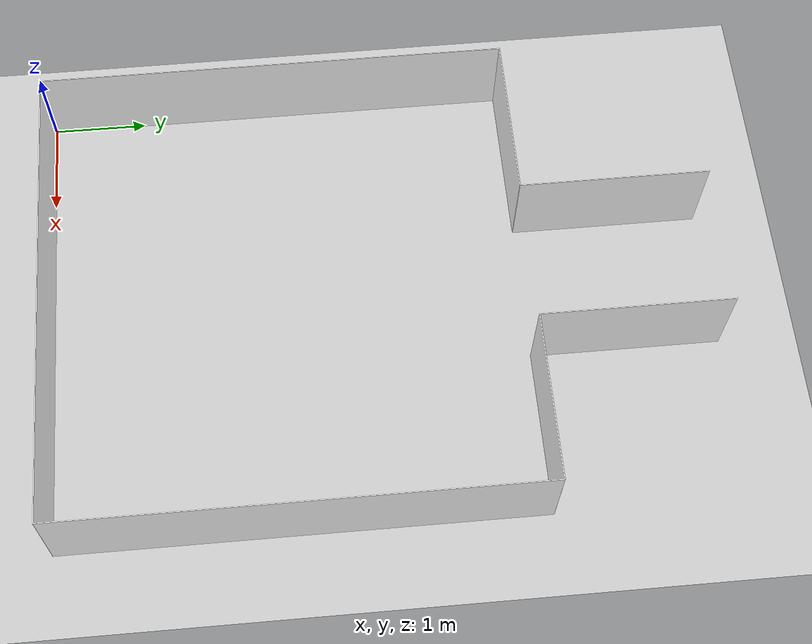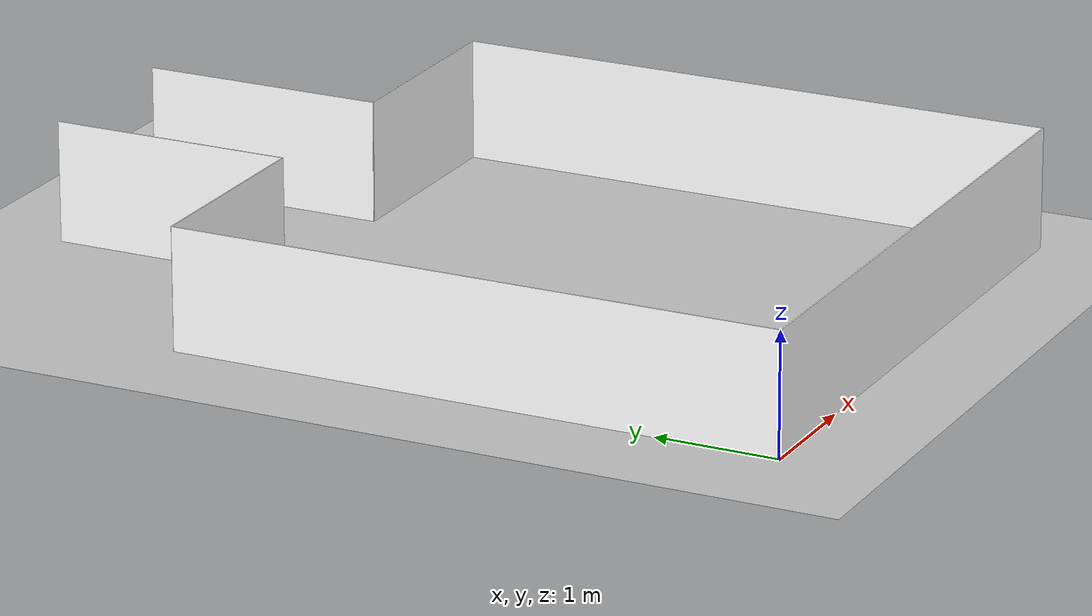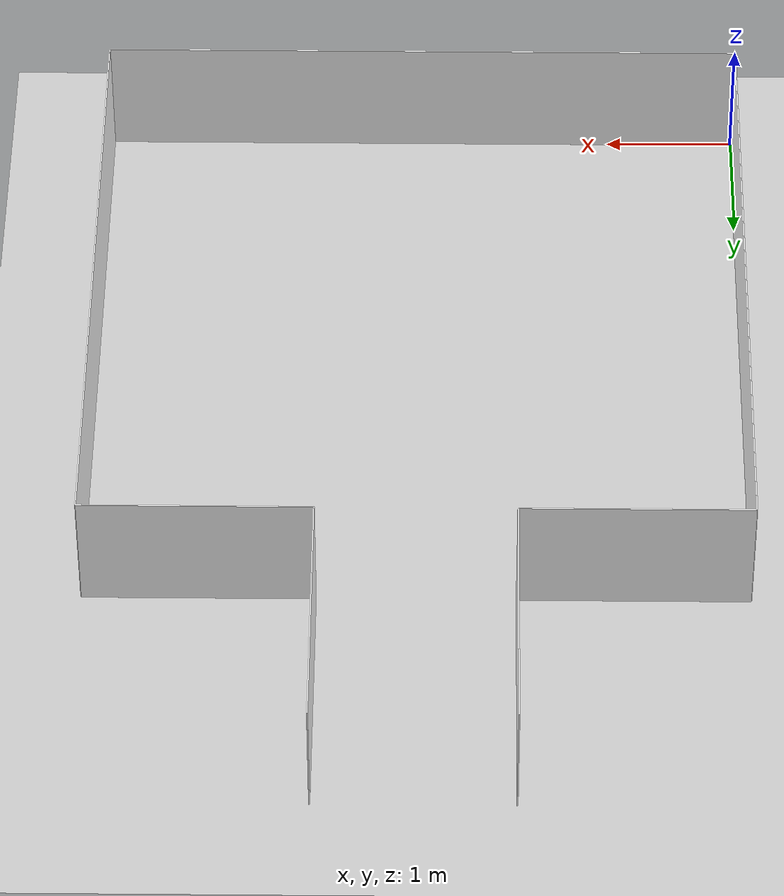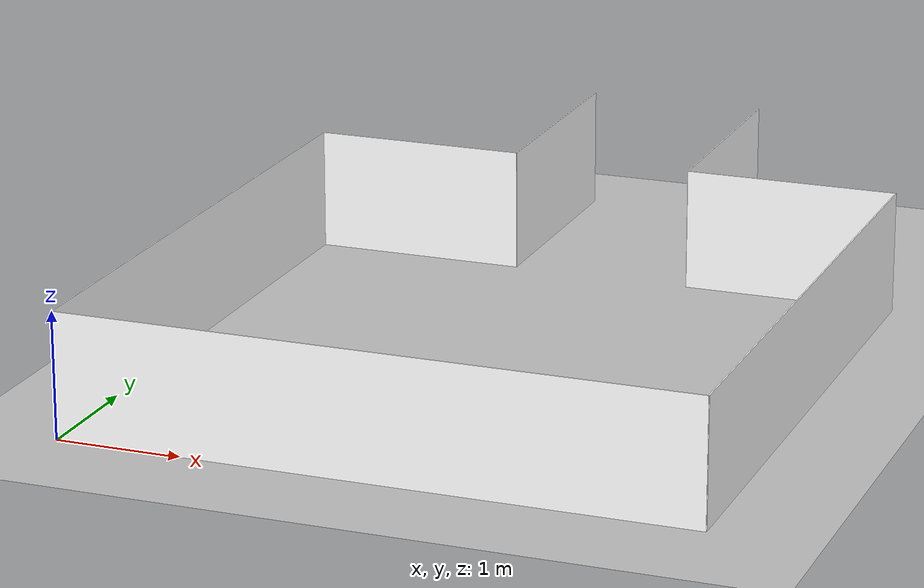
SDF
<?xml version="1.0" ?>
<sdf version="1.6">
  <world name="circuito_cuadrado">
    <!-- Configuración del entorno -->
    <include>
      <uri>model://sun</uri>
    </include>
    <include>
      <uri>model://ground_plane</uri>
    </include>

    <!-- Pared izquierda -->
    <model name="wall_left">
      <static>true</static>
      <link name="link">
        <visual name="visual">
          <geometry>
            <box>
              <size>5 0.01 1</size>
            </box>
          </geometry>
          <material>
            <ambient>1 1 1 1</ambient>
          </material>
        </visual>
        <collision name="collision">
          <geometry>
            <box>
              <size>5 0.01 1</size>
            </box>
          </geometry>
        </collision>
      </link>
      <pose>0 2.5 0.5 0 0 1.5708</pose>
    </model>

    <!-- Pared derecha -->
    <model name="wall_right">
      <static>true</static>
      <link name="link">
        <visual name="visual">
          <geometry>
            <box>
              <size>5 0.01 1</size>
            </box>
          </geometry>
          <material>
            <ambient>1 1 1 1</ambient>
          </material>
        </visual>
        <collision name="collision">
          <geometry>
            <box>
              <size>5 0.01 1</size>
            </box>
          </geometry>
        </collision>
      </link>
      <pose>5 2.5 0.5 0 0 1.5708</pose>
    </model>

    <!-- Pared superior izq-->
    <model name="wall_top_i">
      <static>true</static>
      <link name="link">
        <visual name="visual">
          <geometry>
            <box>
              <size>1.75 0.01 1</size>
            </box>
          </geometry>
          <material>
            <ambient>1 1 1 1</ambient>
          </material>
        </visual>
        <collision name="collision">
          <geometry>
            <box>
              <size>1.75 0.01 1</size>
            </box>
          </geometry>
        </collision>
      </link>
      <pose>0.875 5.0 0.5 0 0 0</pose>
    </model>

    <!-- Pared superior -->
    <model name="wall_top_d">
      <static>true</static>
      <link name="link">
        <visual name="visual">
          <geometry>
            <box>
              <size>1.75 0.01 1</size>
            </box>
          </geometry>
          <material>
            <ambient>1 1 1 1</ambient>
          </material>
        </visual>
        <collision name="collision">
          <geometry>
            <box>
              <size>1.75 0.01 1</size>
            </box>
          </geometry>
        </collision>
      </link>
      <pose>4.125 5.0 0.5 0 0 0</pose>
    </model>

    <!-- Pared inferior -->
    <model name="wall_bottom">
      <static>true</static>
      <link name="link">
        <visual name="visual">
          <geometry>
            <box>
              <size>5 0.01 1</size>
            </box>
          </geometry>
          <material>
            <ambient>1 1 1 1</ambient>
          </material>
        </visual>
        <collision name="collision">
          <geometry>
            <box>
              <size>5 0.01 1</size>
            </box>
          </geometry>
        </collision>
      </link>
      <pose>2.5 0 0.5 0 0 0</pose>
    </model>

    <!-- Inicio pasillo -->
    <model name="wall_passillo_i">
      <static>true</static>
      <link name="link">
        <visual name="visual">
          <geometry>
            <box>
              <size>2 0.01 1</size>
            </box>
          </geometry>
          <material>
            <ambient>1 1 1 1</ambient>
          </material>
        </visual>
        <collision name="collision">
          <geometry>
            <box>
              <size>2 0.01 1</size>
            </box>
          </geometry>
        </collision>
      </link>
      <pose>1.75 6 0.5 0 0 1.5708</pose>
    </model>

    <!-- Inicio pasillo -->
    <model name="wall_passillo_d">
      <static>true</static>
      <link name="link">
        <visual name="visual">
          <geometry>
            <box>
              <size>2 0.01 1</size>
            </box>
          </geometry>
          <material>
            <ambient>1 1 1 1</ambient>
          </material>
        </visual>
        <collision name="collision">
          <geometry>
            <box>
              <size>2 0.01 1</size>
            </box>
          </geometry>
        </collision>
      </link>
      <pose>3.25 6 0.5 0 0 1.5708</pose>
    </model>

  </world>
</sdf>
